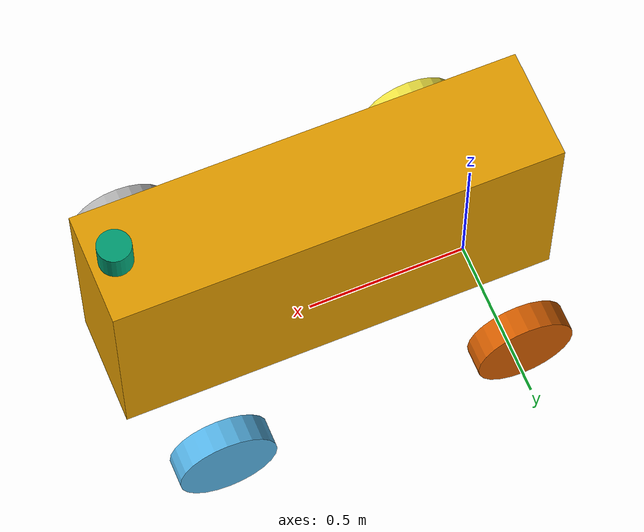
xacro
<?xml version="1.0" ?>

<robot name="$(arg roboname)" xmlns:xacro="http://www.ros.org/wiki/xacro">

  <xacro:property name="PI" value="3.1415926835897931"/>

  <!-- base -->
  <xacro:property name="base_length" value=" 1.3475"/>
  <xacro:property name="base_width" value="0.34"/>
  <xacro:property name="base_height" value="0.685"/>
  <xacro:property name="base_collision_height" value="0.4375"/>
  <xacro:property name="base_mass" value="956"/>
  <xacro:property name="base_mass_ixx" value="343"/>
  <xacro:property name="base_mass_iyy" value="728"/>
  <xacro:property name="base_mass_izz" value="772"/>

  <!-- rear tyre -->
  <xacro:property name="rear_tyre_x" value="0.4725"/>
  <xacro:property name="rear_tyre_y" value="0.4"/>
  <xacro:property name="rear_tyre_r" value="0.15"/>
  <xacro:property name="rear_tyre_length" value="0.0825"/>
  <xacro:property name="rear_tyre_mass" value="20"/>
  <xacro:property name="rear_tyre_mass_ixx" value="0.5"/>
  <xacro:property name="rear_tyre_mass_iyy" value="0.9"/>
  <xacro:property name="rear_tyre_mass_izz" value="0.5"/>

  <!-- front tyre -->
  <xacro:property name="front_tyre_x" value="0.4615"/>
  <xacro:property name="front_tyre_y" value="0.4"/>
  <xacro:property name="front_tyre_r" value="0.15"/>
  <xacro:property name="front_tyre_length" value="0.0825"/>
  <xacro:property name="front_tyre_mass" value="20"/>
  <xacro:property name="front_tyre_mass_ixx" value="0.5"/>
  <xacro:property name="front_tyre_mass_iyy" value="0.9"/>
  <xacro:property name="front_tyre_mass_izz" value="0.5"/>

  <!-- steering -->
  <xacro:property name="str_angle" value="1.57"/>
  <xacro:property name="str_length" value="0.01"/>
  <xacro:property name="str_radius" value="0.05"/>
  <xacro:property name="str_mass" value="5"/>
  <xacro:property name="str_mass_ixx" value="0.012"/>
  <xacro:property name="str_mass_iyy" value="0.025"/>
  <xacro:property name="str_mass_izz" value="0.012"/>

  <!--Car Body-->
  <link name="base_link">
    <collision>
      <origin xyz="0.4725 0 ${base_collision_height}" rpy="0 0 0"/>
      <geometry>
        <box size="${base_length} ${base_width} ${base_height}"/>
      </geometry>
    </collision>

    <visual>
      <origin xyz="0.4725 0 ${base_collision_height}" rpy="0 0 0"/>
      <geometry>
        <box size="${base_length} ${base_width} ${base_height}"/>
      </geometry>
    </visual>
  </link>

  <joint name="inertial_joint" type="fixed">
    <parent link="base_link"/>
    <child link="main_mass"/>
    <origin xyz="0 0 0" rpy="0 0 0"/>
  </joint>

  <link name="main_mass" type="fixed">
    <inertial>
      <origin xyz="0 0 0" rpy="0 0 0"/>
      <mass value="${base_mass}"/>
      <inertia
        ixx="${base_mass_ixx}"  ixy="0.000000"  ixz="0.000000"
        iyy="${base_mass_iyy}"  iyz="0.000000"
        izz="${base_mass_izz}"/>
    </inertial>
  </link>

<!--rear Right Steering-->
  <joint name="rear_right_steering_joint" type="revolute">
    <parent link="base_link"/>
    <child link="rear_right_steering_link"/>
    <origin xyz="0 ${-front_tyre_y} ${front_tyre_r}" rpy="0 0 0"/>
    <axis xyz="0 0 1"/>
    <limit lower="${-str_angle}" upper="${str_angle}" effort="1000000.0" velocity="10000.0"/>
    <dynamics damping="10.0" friction="0.0"/>
  </joint>

  <link name="rear_right_steering_link">
    <visual>
      <origin xyz="0 0 0" rpy="${PI/2} 0 0"/>
      <geometry>
        <cylinder length="${str_length}" radius="${str_radius}"/>
      </geometry>
    </visual>

    <inertial>
      <origin xyz="0 0 0" rpy="0 0 0"/>
      <mass value="${str_mass}"/>
      <inertia
      ixx="${str_mass_ixx}"  ixy="0.000000"  ixz="0.000000"
      iyy="${str_mass_iyy}"  iyz="0.000000"
      izz="${str_mass_izz}"/>
    </inertial>
  </link>

  <!--Rear Right Wheel-->
  <joint name="rear_right_wheel_joint" type="continuous">
    <parent link="rear_right_steering_link"/>
    <child link="rear_right_wheel_link"/>
    <origin xyz="0 0 0" rpy="0 0 0"/>
    <axis xyz="0 1 0"/>
    <dynamics damping="0.1"/>
    <limit effort="100000" velocity="10000" />
    <joint_properties damping="0.0" friction="0.0" />
  </joint>

  <link name="rear_right_wheel_link">
    <collision>
      <origin xyz="0 0 0" rpy="${PI/2} 0 0"/>
      <geometry>
        <cylinder length="${rear_tyre_length}" radius="${rear_tyre_r}"/>
      </geometry>
    </collision>

    <visual>
      <origin xyz="0 0 0" rpy="${PI/2} 0 0"/>
      <geometry>
        <cylinder length="${rear_tyre_length}" radius="${rear_tyre_r}"/>
      </geometry>
    </visual>

    <inertial>
      <origin xyz="0 0 0" rpy="0 0 0"/>
      <mass value="${rear_tyre_mass}"/>
      <inertia
        ixx="${rear_tyre_mass_ixx}"  ixy="0.000000"  ixz="0.000000"
        iyy="${rear_tyre_mass_iyy}"  iyz="0.000000"
        izz="${rear_tyre_mass_izz}"/>
    </inertial>
  </link>

<!--rear Left Steering-->
  <joint name="rear_left_steering_joint" type="revolute">
    <parent link="base_link"/>
    <child link="rear_left_steering_link"/>
    <origin xyz="0 ${front_tyre_y} ${front_tyre_r}" rpy="0 0 0"/>
    <axis xyz="0 0 1"/>
    <limit lower="${-str_angle}" upper="${str_angle}" effort="1000000.0" velocity="10000.0"/>
    <dynamics damping="10.0" friction="0.0"/>
  </joint>

  <link name="rear_left_steering_link">

    <visual>
      <origin xyz="0 0 0" rpy="${PI/2} 0 0"/>
      <geometry>
        <cylinder length="${str_length}" radius="${str_radius}"/>
      </geometry>
    </visual>

    <inertial>
      <origin xyz="0 0 0" rpy="0 0 0"/>
      <mass value="${str_mass}"/>
      <inertia
      ixx="${str_mass_ixx}"  ixy="0.000000"  ixz="0.000000"
      iyy="${str_mass_iyy}"  iyz="0.000000"
      izz="${str_mass_izz}"/>
    </inertial>
  </link>

  <!--Rear Left Wheel-->
  <joint name="rear_left_wheel_joint" type="continuous">
    <parent link="rear_left_steering_link"/>
    <child link="rear_left_wheel_link"/>
    <origin xyz="0 0 0" rpy="0 0 0"/>
    <axis xyz="0 1 0"/>
    <dynamics damping="0.1"/>
    <limit effort="100000" velocity="10000" />
    <joint_properties damping="0.0" friction="0.0" />
  </joint>

  <link name="rear_left_wheel_link">
    <collision>
      <origin xyz="0 0 0" rpy="${PI/2} 0 0"/>
      <geometry>
        <cylinder length="${rear_tyre_length}" radius="${rear_tyre_r}"/>
      </geometry>
    </collision>

    <visual>
      <origin xyz="0 0 0" rpy="${PI/2} 0 0"/>
      <geometry>
        <cylinder length="${rear_tyre_length}" radius="${rear_tyre_r}"/>
      </geometry>
    </visual>

    <inertial>
      <origin xyz="0 0 0" rpy="0 0 0"/>
      <mass value="${rear_tyre_mass}"/>
      <inertia
        ixx="${rear_tyre_mass_ixx}"  ixy="0.000000"  ixz="0.000000"
        iyy="${rear_tyre_mass_iyy}"  iyz="0.000000"
        izz="${rear_tyre_mass_izz}"/>
    </inertial>
  </link>

  <!--Front Right Steering-->
  <joint name="front_right_steering_joint" type="revolute">
    <parent link="base_link"/>
    <child link="front_right_steering_link"/>
    <origin xyz="${front_tyre_x+0.472} ${-front_tyre_y} ${front_tyre_r}" rpy="0 0 0"/>
    <axis xyz="0 0 1"/>
    <limit lower="${-str_angle}" upper="${str_angle}" effort="1000000.0" velocity="10000.0"/>
    <dynamics damping="10.0" friction="0.0"/>
  </joint>

  <link name="front_right_steering_link">
    <visual>
      <origin xyz="0 0 0" rpy="${PI/2} 0 0"/>
      <geometry>
        <cylinder length="${str_length}" radius="${str_radius}"/>
      </geometry>
    </visual>

    <inertial>
      <origin xyz="0 0 0" rpy="0 0 0"/>
      <mass value="${str_mass}"/>
      <inertia
      ixx="${str_mass_ixx}"  ixy="0.000000"  ixz="0.000000"
      iyy="${str_mass_iyy}"  iyz="0.000000"
      izz="${str_mass_izz}"/>
    </inertial>
  </link>

  <!--Front Right Wheel-->
  <joint name="front_right_wheel_joint" type="continuous">
    <parent link="front_right_steering_link"/>
    <child link="front_right_wheel_link"/>
    <origin xyz="0 0 0" rpy="0 0 0"/>
    <axis xyz="0 1 0"/>
    <dynamics damping="0.1"/>
    <limit effort="1000000" velocity="10000" />
    <joint_properties damping="0.0" friction="0.0" />
  </joint>

  <link name="front_right_wheel_link">
    <collision>
      <origin xyz="0 0 0" rpy="${PI/2} 0 0"/>
      <geometry>
        <cylinder length="${front_tyre_length}" radius="${front_tyre_r}"/>
      </geometry>
    </collision>

    <visual>
      <origin xyz="0 0 0" rpy="${PI/2} 0 0"/>
      <geometry>
        <cylinder length="${front_tyre_length}" radius="${front_tyre_r}"/>
      </geometry>
    </visual>

    <inertial>
      <origin xyz="0 0 0" rpy="0 0 0"/>
      <mass value="${front_tyre_mass}"/>
      <inertia
        ixx="${front_tyre_mass_ixx}"  ixy="0.000000"  ixz="0.000000"
        iyy="${front_tyre_mass_iyy}"  iyz="0.000000"
        izz="${front_tyre_mass_izz}"/>
    </inertial>
  </link>

  <!--Front Left Steering-->
  <joint name="front_left_steering_joint" type="revolute">
    <parent link="base_link"/>
    <child link="front_left_steering_link"/>
    <origin xyz="${front_tyre_x+0.472} ${front_tyre_y} ${front_tyre_r}" rpy="0 0 0"/>
    <axis xyz="0 0 1"/>
    <limit lower="${-str_angle}" upper="${str_angle}" effort="1000000.0" velocity="10000.0"/>
    <dynamics damping="10.0" friction="0.0"/>
  </joint>

  <link name="front_left_steering_link">

    <visual>
      <origin xyz="0 0 0" rpy="${PI/2} 0 0"/>
      <geometry>
        <cylinder length="${str_length}" radius="${str_radius}"/>
      </geometry>
    </visual>

    <inertial>
      <origin xyz="0 0 0" rpy="0 0 0"/>
      <mass value="${str_mass}"/>
      <inertia
      ixx="${str_mass_ixx}"  ixy="0.000000"  ixz="0.000000"
      iyy="${str_mass_iyy}"  iyz="0.000000"
      izz="${str_mass_izz}"/>
    </inertial>
  </link>

  <!--Front Left Wheel-->
  <joint name="front_left_wheel_joint" type="continuous">
    <parent link="front_left_steering_link"/>
    <child link="front_left_wheel_link"/>
    <origin xyz="0 0 0" rpy="0 0 0"/>
    <axis xyz="0 1 0"/>
    <dynamics damping="0.1"/>
    <limit effort="1000000" velocity="10000" />
    <joint_properties damping="0.0" friction="0.0" />
  </joint>

  <link name="front_left_wheel_link">
    <collision>
      <origin xyz="0 0 0" rpy="${PI/2} 0 0"/>
      <geometry>
        <cylinder length="${front_tyre_length}" radius="${front_tyre_r}"/>
      </geometry>
    </collision>

    <visual>
      <origin xyz="0 0 0" rpy="${PI/2} 0 0"/>
      <geometry>
        <cylinder length="${front_tyre_length}" radius="${front_tyre_r}"/>
      </geometry>
    </visual>

    <inertial>
      <origin xyz="0 0 0" rpy="0 0 0"/>
      <mass value="${front_tyre_mass}"/>
      <inertia
        ixx="${front_tyre_mass_ixx}"  ixy="0.000000"  ixz="0.000000"
        iyy="${front_tyre_mass_iyy}"  iyz="0.000000"
        izz="${front_tyre_mass_izz}"/>
    </inertial>
  </link>

  <joint name="laser_joint" type="fixed">
      <parent link="base_link" />
      <child link="rslidar" />
      <origin xyz="1.072 0 0.8225" rpy="0 0 0"/>
  </joint>

  <link name="rslidar">
    <collision>
      <origin xyz="0 0 0" rpy="0 0 0"/>
      <geometry>
        <cylinder length="0.1" radius="0.05"/>
      </geometry>
    </collision>

    <visual>
      <origin xyz="0 0 0" rpy="0 0 0"/>
      <geometry>
        <cylinder length="0.1" radius="0.05"/>
      </geometry>
    </visual>

    <inertial>
      <origin xyz="0 0 0" rpy="0 0 0"/>
      <mass value="1"/>
      <inertia
      ixx="0.00145833"  ixy="0.000000"  ixz="0.000000"
      iyy="0.00145833"  iyz="0.000000"
      izz="0.00125"/>
    </inertial>
  </link>

 <joint name="imu_joint" type="fixed">
      <parent link="base_link" />
      <child link="imu_link" />
      <origin xyz="0.472 0 0.4175" rpy="0 0 0"/>
  </joint>

  <link name="imu_link">
    <collision>
      <origin xyz="0 0 0" rpy="0 0 0"/>
      <geometry>
        <cylinder length="0.1" radius="0.05"/>
      </geometry>
    </collision>

    <visual>
      <origin xyz="0 0 0" rpy="0 0 0"/>
      <geometry>
        <cylinder length="0.1" radius="0.05"/>
      </geometry>
    </visual>

    <inertial>
      <origin xyz="0 0 0" rpy="0 0 0"/>
      <mass value="1"/>
      <inertia
      ixx="0.00145833"  ixy="0.000000"  ixz="0.000000"
      iyy="0.00145833"  iyz="0.000000"
      izz="0.00125"/>
    </inertial>
  </link>

  <!-- 雷达 -->
  <gazebo reference="rslidar">
    <sensor type="ray" name="rplidar">
      <pose>0 0 0 0 0 0</pose>
      <visualize>false</visualize>
      <update_rate>40</update_rate>
      <ray>
        <scan>
          <horizontal>
            <samples>1080</samples>
            <resolution>1</resolution>
            <min_angle>-3.14</min_angle>
            <max_angle>3.14</max_angle>
          </horizontal>
        </scan>
        <range>
          <min>0.1</min>
          <max>30.0</max>
          <resolution>0.01</resolution>
        </range>
        <noise>
          <type>gaussian</type>
          <mean>0.0</mean>
          <stddev>0.01</stddev>
        </noise>
      </ray>
      <plugin name="gazebo_rplidar" filename="libgazebo_ros_laser.so">
        <topicName>sensor/common/tools/scan</topicName>
        <frameName>rslidar</frameName>
      </plugin>
    </sensor>
  </gazebo>

  <!-- imu -->
  <gazebo reference="imu_link">
    <gravity>true</gravity>
    <sensor name="imu_sensor" type="imu">
      <always_on>true</always_on>
      <update_rate>200</update_rate>
      <visualize>true</visualize>
      <topic>__default_topic__</topic>
      <plugin filename="libgazebo_ros_imu_sensor.so" name="imu_plugin">
        <topicName>sensor/imu/imu_data</topicName>
        <bodyName>imu_link</bodyName>
        <updateRateHZ>200.0</updateRateHZ>
        <gaussianNoise>0.0</gaussianNoise>
        <xyzOffset>0 0 0</xyzOffset>
        <rpyOffset>0 0 0</rpyOffset>
        <frameName>imu_link</frameName>
        <initialOrientationAsReference>false</initialOrientationAsReference>
      </plugin>
      <pose>0 0 0 0 0 0</pose>
    </sensor>
  </gazebo>

  <!-- base_link里程计 -->
  <gazebo>
  <plugin name="ground_truth_odometry" filename="libgazebo_ros_p3d.so">
    <alwaysOn>true</alwaysOn>
    <updateRate>100.0</updateRate>
    <bodyName>base_link</bodyName>
    <topicName>base_pose_ground_truth</topicName>
    <gaussianNoise>0.01</gaussianNoise>
    <frameName>map</frameName>
    <xyzOffsets>0 0 0</xyzOffsets>
    <rpyOffsets>0 0 0</rpyOffsets>
  </plugin>
</gazebo>

  <transmission name="tran1">
    <type>transmission_interface/SimpleTransmission</type>
    <joint name="rear_right_steering_joint">
      <hardwareInterface>hardware_interface/EffortJointInterface</hardwareInterface>
    </joint>
    <actuator name="motor1">
      <hardwareInterface>hardware_interface/EffortJointInterface</hardwareInterface>
      <mechanicalReduction>1</mechanicalReduction>
      <motorTorqueConstant>1000000</motorTorqueConstant>
    </actuator>
  </transmission>

  <transmission name="tran2">
    <type>transmission_interface/SimpleTransmission</type>
    <joint name="rear_right_wheel_joint">
      <hardwareInterface>hardware_interface/VelocityJointInterface</hardwareInterface>
    </joint>
    <actuator name="motor2">
      <hardwareInterface>hardware_interface/VelocityJointInterface</hardwareInterface>
      <mechanicalReduction>1</mechanicalReduction>
    </actuator>
  </transmission>

  <transmission name="tran3">
    <type>transmission_interface/SimpleTransmission</type>
    <joint name="rear_left_steering_joint">
      <hardwareInterface>hardware_interface/EffortJointInterface</hardwareInterface>
    </joint>
    <actuator name="motor3">
      <hardwareInterface>hardware_interface/EffortJointInterface</hardwareInterface>
      <mechanicalReduction>1</mechanicalReduction>
      <motorTorqueConstant>1000000</motorTorqueConstant>
    </actuator>
  </transmission>

   <transmission name="tran4">
    <type>transmission_interface/SimpleTransmission</type>
    <joint name="rear_left_wheel_joint">
      <hardwareInterface>hardware_interface/VelocityJointInterface</hardwareInterface>
    </joint>
    <actuator name="motor4">
      <hardwareInterface>hardware_interface/VelocityJointInterface</hardwareInterface>
      <mechanicalReduction>1</mechanicalReduction>
    </actuator>
  </transmission>

  <transmission name="tran5">
    <type>transmission_interface/SimpleTransmission</type>
    <joint name="front_right_steering_joint">
      <hardwareInterface>hardware_interface/EffortJointInterface</hardwareInterface>
    </joint>
    <actuator name="motor5">
      <hardwareInterface>hardware_interface/EffortJointInterface</hardwareInterface>
      <mechanicalReduction>1</mechanicalReduction>
      <motorTorqueConstant>1000000</motorTorqueConstant>
    </actuator>
  </transmission>

   <transmission name="tran6">
    <type>transmission_interface/SimpleTransmission</type>
    <joint name="front_right_wheel_joint">
      <hardwareInterface>hardware_interface/VelocityJointInterface</hardwareInterface>
    </joint>
    <actuator name="motor6">
      <hardwareInterface>hardware_interface/VelocityJointInterface</hardwareInterface>
      <mechanicalReduction>1</mechanicalReduction>
    </actuator>
  </transmission>

  <transmission name="tran7">
    <type>transmission_interface/SimpleTransmission</type>
    <joint name="front_left_steering_joint">
      <hardwareInterface>hardware_interface/EffortJointInterface</hardwareInterface>
    </joint>
    <actuator name="motor7">
      <hardwareInterface>hardware_interface/EffortJointInterface</hardwareInterface>
      <mechanicalReduction>1</mechanicalReduction>
      <motorTorqueConstant>1000000</motorTorqueConstant>
    </actuator>
  </transmission>

   <transmission name="tran8">
    <type>transmission_interface/SimpleTransmission</type>
    <joint name="front_left_wheel_joint">
      <hardwareInterface>hardware_interface/VelocityJointInterface</hardwareInterface>
    </joint>
    <actuator name="motor8">
      <hardwareInterface>hardware_interface/VelocityJointInterface</hardwareInterface>
      <mechanicalReduction>1</mechanicalReduction>
    </actuator>
  </transmission>

   <gazebo reference="rear_right_wheel_link">
    <mu1>1</mu1>
    <mu2>1</mu2>
    <kp>10000000</kp>
    <kd>1</kd>
    <minDepth>0.01</minDepth>
    <maxVel>100</maxVel>
  </gazebo>

  <gazebo reference="rear_left_wheel_link">
    <mu1>1</mu1>
    <mu2>1</mu2>
    <kp>10000000</kp>
    <kd>1</kd>
    <minDepth>0.01</minDepth>
    <maxVel>100</maxVel>
  </gazebo>

    <gazebo reference="front_right_wheel_link">
    <mu1>1</mu1>
    <mu2>1</mu2>
    <kp>10000000</kp>
    <kd>1</kd>
    <minDepth>0.01</minDepth>
    <maxVel>100</maxVel>
  </gazebo>

  <gazebo reference="front_left_wheel_link">
    <mu1>1</mu1>
    <mu2>1</mu2>
    <kp>10000000</kp>
    <kd>1</kd>
    <minDepth>0.01</minDepth>
    <maxVel>100</maxVel>
  </gazebo>

   <!-- Gazebo Plugins -->
  <gazebo>
    <plugin name="gazebo_ros_control" filename="libgazebo_ros_control.so">
      <robotNamespace>/$(arg roboname)</robotNamespace>
      <robotParam>robot_description</robotParam>
      <robotSimType>gazebo_ros_control/DefaultRobotHWSim</robotSimType>
    </plugin>
  </gazebo>

  <gazebo>
    <plugin name="joint_state_publisher" filename="libgazebo_ros_joint_state_publisher.so">
      <jointName>rear_left_steering_joint, rear_left_wheel_joint, rear_right_steering_joint, rear_right_wheel_joint, front_left_steering_joint, front_right_steering_joint, front_right_wheel_joint, front_left_wheel_joint</jointName>
      <updateRate>50.0</updateRate>
      <robotNamespace>/$(arg roboname)</robotNamespace>
      <alwaysOn>true</alwaysOn>
    </plugin>
  </gazebo>

</robot>
